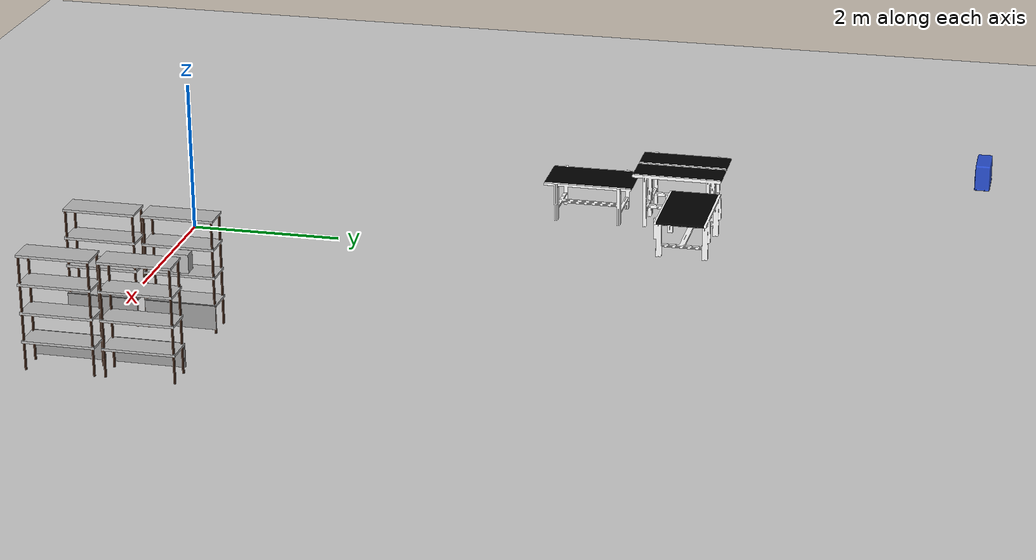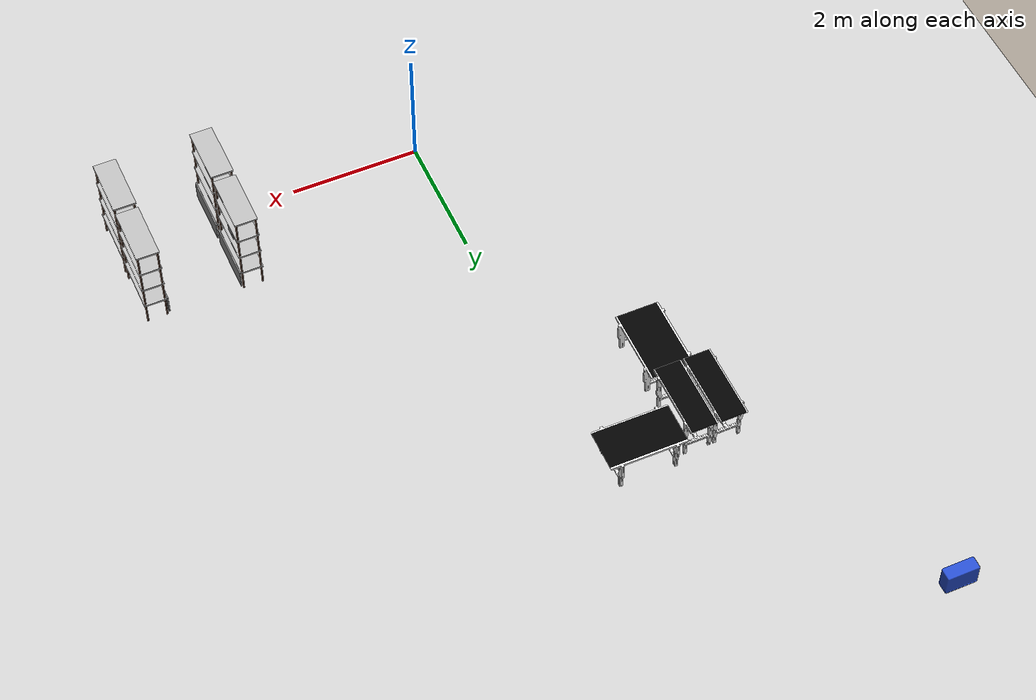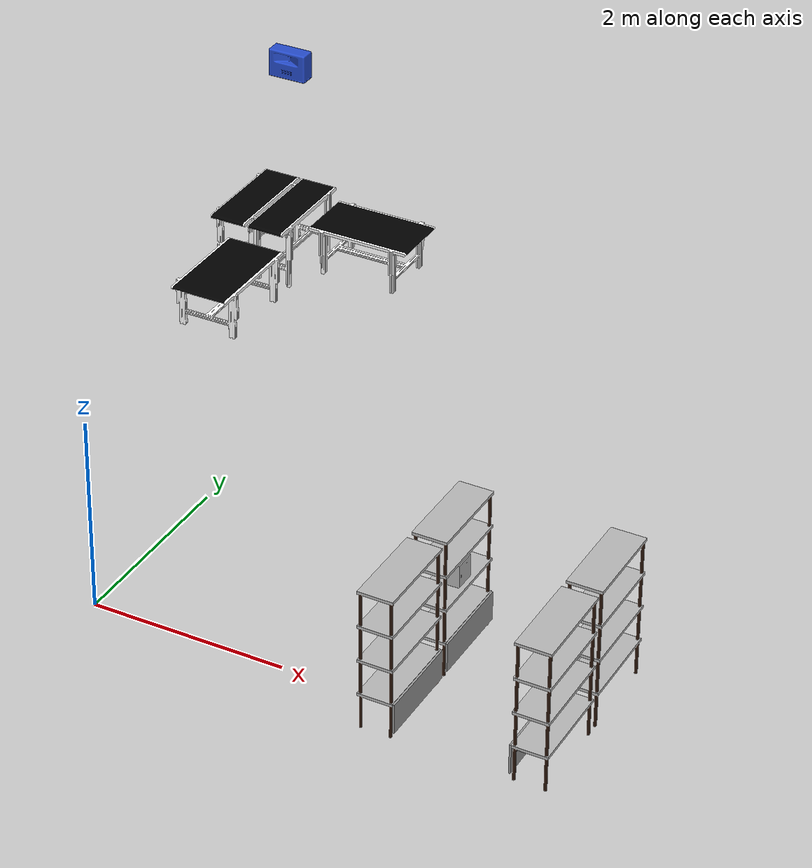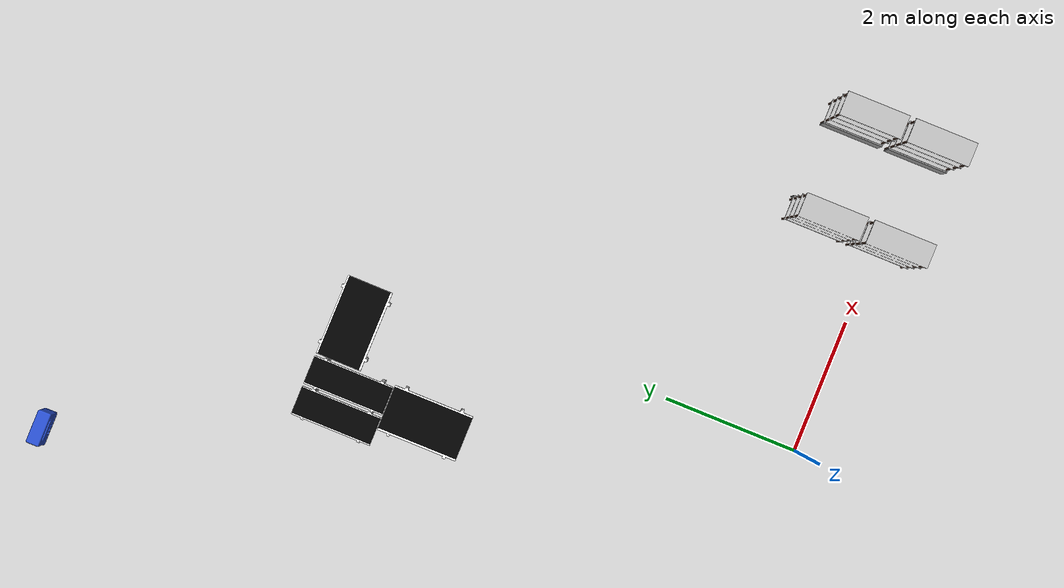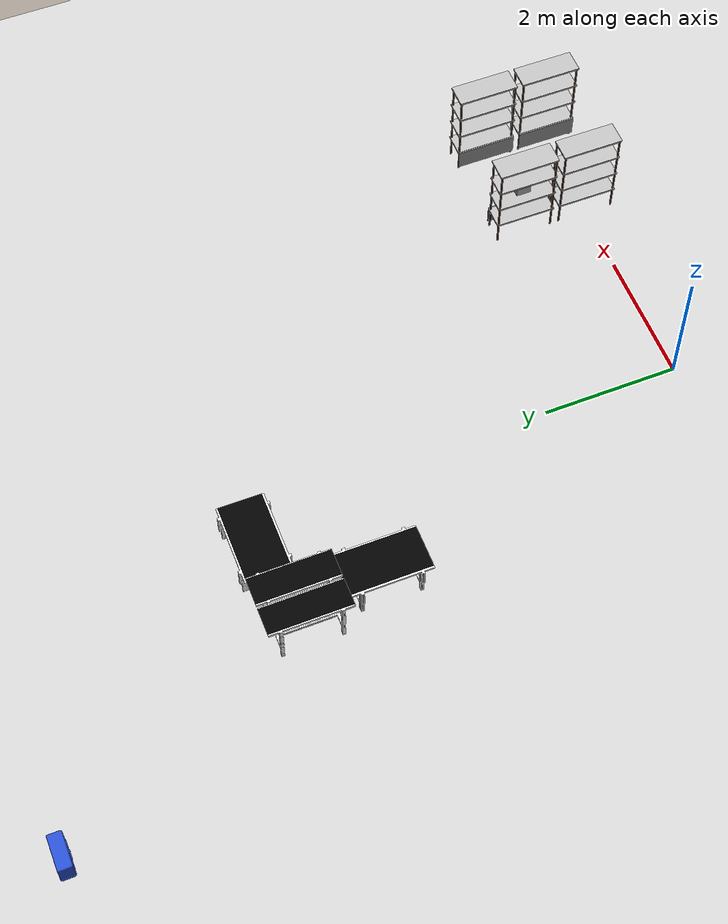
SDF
<sdf version="1.7">
 <world name="default">
  <model name="ground_plane">
   <static>1</static>
   <link name="link">
    <collision name="collision">
     <geometry><plane><normal>0 0 1</normal><size>100 100</size></plane></geometry>
     <surface><friction><ode><mu>100</mu><mu2>50</mu2></ode></friction></surface>
    </collision>
    <visual name="visual">
     <cast_shadows>0</cast_shadows>
     <geometry><plane><normal>0 0 1</normal><size>100 100</size></plane></geometry>
     <material>
      <script><uri>file://media/materials/scripts/gazebo.material</uri><name>Gazebo/Grey</name></script>
     </material>
    </visual>
   </link>
  </model>
  <model name="rack_7">
   <link name="link">
    <inertial>
     <mass>0.1</mass>
     <inertia><ixx>0.01857</ixx><ixy>0</ixy><ixz>0</ixz><iyy>0.015598</iyy><iyz>0</iyz><izz>0.00305</izz></inertia>
    </inertial>
    <visual name="visual1">
     <cast_shadows>0</cast_shadows>
     <geometry><mesh><uri>model://rack/meshes/rack.dae</uri></mesh></geometry>
     <material>
      <shader type="pixel"><normal_map>__default__</normal_map></shader>
      <emissive>0 0 0 1</emissive>
     </material>
    </visual>
    <visual name="visual_2">
     <cast_shadows>0</cast_shadows>
     <geometry><box><size>0.02 0.9 0.31</size></box></geometry>
     <material>
      <lighting>1</lighting>
      <script><uri>file://media/materials/scripts/gazebo.material</uri><name>Gazebo/Grey</name></script>
      <shader type="pixel"><normal_map>__default__</normal_map></shader>
      <ambient>0.3 0.3 0.3 1</ambient>
      <diffuse>0.7 0.7 0.7 1</diffuse>
      <specular>0.01 0.01 0.01 1</specular>
      <emissive>0 0 0 1</emissive>
     </material>
     <pose>-0.185 0 0.22 0 -0 0</pose>
    </visual>
    <collision name="collision_7">
     <pose>0 0 0.36 0 1.57 1.57</pose>
     <geometry><box><size>0.05 0.35 0.91</size></box></geometry>
     <surface>
      <friction>
       <ode><mu>1</mu><mu2>1</mu2><fdir1>0 0 0</fdir1><slip1>0</slip1><slip2>0</slip2></ode>
       <torsional>
        <coefficient>1</coefficient>
        <patch_radius>0</patch_radius>
        <surface_radius>0</surface_radius>
        <use_patch_radius>1</use_patch_radius>
        <ode><slip>0</slip></ode>
       </torsional>
      </friction>
      <bounce><restitution_coefficient>0</restitution_coefficient><threshold>1e+06</threshold></bounce>
      <contact>
       <collide_without_contact>0</collide_without_contact>
       <collide_without_contact_bitmask>1</collide_without_contact_bitmask>
       <collide_bitmask>1</collide_bitmask>
       <ode>
        <soft_cfm>0</soft_cfm>
        <soft_erp>0.2</soft_erp>
        <kp>1e+15</kp>
        <kd>1e+13</kd>
        <max_vel>0.01</max_vel>
        <min_depth>0</min_depth>
       </ode>
       <bullet>
        <split_impulse>1</split_impulse>
        <split_impulse_penetration_threshold>-0.01</split_impulse_penetration_threshold>
        <soft_cfm>0</soft_cfm>
        <soft_erp>0.2</soft_erp>
        <kp>1e+13</kp>
        <kd>1</kd>
       </bullet>
      </contact>
     </surface>
    </collision>
    <collision name="collision_6">
     <pose>0 0 0.725 0 1.57 1.57</pose>
     <geometry><box><size>0.05 0.35 0.91</size></box></geometry>
     <surface>
      <friction>
       <ode><mu>1</mu><mu2>1</mu2><fdir1>0 0 0</fdir1><slip1>0</slip1><slip2>0</slip2></ode>
       <torsional>
        <coefficient>1</coefficient>
        <patch_radius>0</patch_radius>
        <surface_radius>0</surface_radius>
        <use_patch_radius>1</use_patch_radius>
        <ode><slip>0</slip></ode>
       </torsional>
      </friction>
      <bounce><restitution_coefficient>0</restitution_coefficient><threshold>1e+06</threshold></bounce>
      <contact>
       <collide_without_contact>0</collide_without_contact>
       <collide_without_contact_bitmask>1</collide_without_contact_bitmask>
       <collide_bitmask>1</collide_bitmask>
       <ode>
        <soft_cfm>0</soft_cfm>
        <soft_erp>0.2</soft_erp>
        <kp>1e+15</kp>
        <kd>1e+13</kd>
        <max_vel>0.01</max_vel>
        <min_depth>0</min_depth>
       </ode>
       <bullet>
        <split_impulse>1</split_impulse>
        <split_impulse_penetration_threshold>-0.01</split_impulse_penetration_threshold>
        <soft_cfm>0</soft_cfm>
        <soft_erp>0.2</soft_erp>
        <kp>1e+13</kp>
        <kd>1</kd>
       </bullet>
      </contact>
     </surface>
    </collision>
    <collision name="collision_5">
     <pose>0 0 1.09 0 1.57 1.57</pose>
     <geometry><box><size>0.05 0.35 0.91</size></box></geometry>
     <surface>
      <friction>
       <ode><mu>1</mu><mu2>1</mu2><fdir1>0 0 0</fdir1><slip1>0</slip1><slip2>0</slip2></ode>
       <torsional>
        <coefficient>1</coefficient>
        <patch_radius>0</patch_radius>
        <surface_radius>0</surface_radius>
        <use_patch_radius>1</use_patch_radius>
        <ode><slip>0</slip></ode>
       </torsional>
      </friction>
      <bounce><restitution_coefficient>0</restitution_coefficient><threshold>1e+06</threshold></bounce>
      <contact>
       <collide_without_contact>0</collide_without_contact>
       <collide_without_contact_bitmask>1</collide_without_contact_bitmask>
       <collide_bitmask>1</collide_bitmask>
       <ode>
        <soft_cfm>0</soft_cfm>
        <soft_erp>0.2</soft_erp>
        <kp>1e+15</kp>
        <kd>1e+13</kd>
        <max_vel>0.01</max_vel>
        <min_depth>0</min_depth>
       </ode>
       <bullet>
        <split_impulse>1</split_impulse>
        <split_impulse_penetration_threshold>-0.01</split_impulse_penetration_threshold>
        <soft_cfm>0</soft_cfm>
        <soft_erp>0.2</soft_erp>
        <kp>1e+13</kp>
        <kd>1</kd>
       </bullet>
      </contact>
     </surface>
    </collision>
    <collision name="collision_3">
     <pose>0 0 1.455 0 1.57 1.57</pose>
     <geometry><box><size>0.05 0.35 0.91</size></box></geometry>
     <surface>
      <friction>
       <ode><mu>1</mu><mu2>1</mu2><fdir1>0 0 0</fdir1><slip1>0</slip1><slip2>0</slip2></ode>
       <torsional>
        <coefficient>1</coefficient>
        <patch_radius>0</patch_radius>
        <surface_radius>0</surface_radius>
        <use_patch_radius>1</use_patch_radius>
        <ode><slip>0</slip></ode>
       </torsional>
      </friction>
      <bounce><restitution_coefficient>0</restitution_coefficient><threshold>1e+06</threshold></bounce>
      <contact>
       <collide_without_contact>0</collide_without_contact>
       <collide_without_contact_bitmask>1</collide_without_contact_bitmask>
       <collide_bitmask>1</collide_bitmask>
       <ode>
        <soft_cfm>0</soft_cfm>
        <soft_erp>0.2</soft_erp>
        <kp>1e+15</kp>
        <kd>1e+13</kd>
        <max_vel>0.01</max_vel>
        <min_depth>0</min_depth>
       </ode>
       <bullet>
        <split_impulse>1</split_impulse>
        <split_impulse_penetration_threshold>-0.01</split_impulse_penetration_threshold>
        <soft_cfm>0</soft_cfm>
        <soft_erp>0.2</soft_erp>
        <kp>1e+13</kp>
        <kd>1</kd>
       </bullet>
      </contact>
     </surface>
    </collision>
    <collision name="collision_1">
     <pose>0 0.43 0.73 0 -0 1.57</pose>
     <geometry><box><size>0.05 0.36 1.46</size></box></geometry>
     <surface>
      <friction>
       <ode><mu>1</mu><mu2>1</mu2><fdir1>0 0 0</fdir1><slip1>0</slip1><slip2>0</slip2></ode>
       <torsional>
        <coefficient>1</coefficient>
        <patch_radius>0</patch_radius>
        <surface_radius>0</surface_radius>
        <use_patch_radius>1</use_patch_radius>
        <ode><slip>0</slip></ode>
       </torsional>
      </friction>
      <bounce><restitution_coefficient>0</restitution_coefficient><threshold>1e+06</threshold></bounce>
      <contact>
       <collide_without_contact>0</collide_without_contact>
       <collide_without_contact_bitmask>1</collide_without_contact_bitmask>
       <collide_bitmask>1</collide_bitmask>
       <ode>
        <soft_cfm>0</soft_cfm>
        <soft_erp>0.2</soft_erp>
        <kp>1e+15</kp>
        <kd>1e+13</kd>
        <max_vel>0.01</max_vel>
        <min_depth>0</min_depth>
       </ode>
       <bullet>
        <split_impulse>1</split_impulse>
        <split_impulse_penetration_threshold>-0.01</split_impulse_penetration_threshold>
        <soft_cfm>0</soft_cfm>
        <soft_erp>0.2</soft_erp>
        <kp>1e+13</kp>
        <kd>1</kd>
       </bullet>
      </contact>
     </surface>
    </collision>
    <collision name="collision_2">
     <pose>0 -0.43 0.73 0 -0 1.57</pose>
     <geometry><box><size>0.05 0.36 1.46</size></box></geometry>
     <surface>
      <friction>
       <ode><mu>1</mu><mu2>1</mu2><fdir1>0 0 0</fdir1><slip1>0</slip1><slip2>0</slip2></ode>
       <torsional>
        <coefficient>1</coefficient>
        <patch_radius>0</patch_radius>
        <surface_radius>0</surface_radius>
        <use_patch_radius>1</use_patch_radius>
        <ode><slip>0</slip></ode>
       </torsional>
      </friction>
      <bounce><restitution_coefficient>0</restitution_coefficient><threshold>1e+06</threshold></bounce>
      <contact>
       <collide_without_contact>0</collide_without_contact>
       <collide_without_contact_bitmask>1</collide_without_contact_bitmask>
       <collide_bitmask>1</collide_bitmask>
       <ode>
        <soft_cfm>0</soft_cfm>
        <soft_erp>0.2</soft_erp>
        <kp>1e+15</kp>
        <kd>1e+13</kd>
        <max_vel>0.01</max_vel>
        <min_depth>0</min_depth>
       </ode>
       <bullet>
        <split_impulse>1</split_impulse>
        <split_impulse_penetration_threshold>-0.01</split_impulse_penetration_threshold>
        <soft_cfm>0</soft_cfm>
        <soft_erp>0.2</soft_erp>
        <kp>1e+13</kp>
        <kd>1</kd>
       </bullet>
      </contact>
     </surface>
    </collision>
    <collision name="collision">
     <pose>-0.185 0 0.22 0 -0 0</pose>
     <geometry><box><size>0.02 0.9 0.31</size></box></geometry>
     <surface>
      <friction>
       <ode><mu>1</mu><mu2>1</mu2><fdir1>0 0 0</fdir1><slip1>0</slip1><slip2>0</slip2></ode>
       <torsional>
        <coefficient>1</coefficient>
        <patch_radius>0</patch_radius>
        <surface_radius>0</surface_radius>
        <use_patch_radius>1</use_patch_radius>
        <ode><slip>0</slip></ode>
       </torsional>
      </friction>
      <bounce><restitution_coefficient>0</restitution_coefficient><threshold>1e+06</threshold></bounce>
      <contact>
       <collide_without_contact>0</collide_without_contact>
       <collide_without_contact_bitmask>1</collide_without_contact_bitmask>
       <collide_bitmask>1</collide_bitmask>
       <ode>
        <soft_cfm>0</soft_cfm>
        <soft_erp>0.2</soft_erp>
        <kp>1e+15</kp>
        <kd>1e+13</kd>
        <max_vel>0.01</max_vel>
        <min_depth>0</min_depth>
       </ode>
       <bullet>
        <split_impulse>1</split_impulse>
        <split_impulse_penetration_threshold>-0.01</split_impulse_penetration_threshold>
        <soft_cfm>0</soft_cfm>
        <soft_erp>0.2</soft_erp>
        <kp>1e+13</kp>
        <kd>1</kd>
       </bullet>
      </contact>
     </surface>
    </collision>
   </link>
   <static>0</static>
   <pose>4.7 1 0.034211 0 -0 0</pose>
  </model>
  <model name="rack_8">
   <link name="link">
    <inertial>
     <mass>0.1</mass>
     <inertia><ixx>0.01857</ixx><ixy>0</ixy><ixz>0</ixz><iyy>0.015598</iyy><iyz>0</iyz><izz>0.00305</izz></inertia>
    </inertial>
    <visual name="visual1">
     <cast_shadows>0</cast_shadows>
     <geometry><mesh><uri>model://rack/meshes/rack.dae</uri></mesh></geometry>
     <material>
      <shader type="pixel"><normal_map>__default__</normal_map></shader>
      <emissive>0 0 0 1</emissive>
     </material>
    </visual>
    <visual name="visual_2">
     <cast_shadows>0</cast_shadows>
     <geometry><box><size>0.02 0.9 0.31</size></box></geometry>
     <material>
      <lighting>1</lighting>
      <script><uri>file://media/materials/scripts/gazebo.material</uri><name>Gazebo/Grey</name></script>
      <shader type="pixel"><normal_map>__default__</normal_map></shader>
      <ambient>0.3 0.3 0.3 1</ambient>
      <diffuse>0.7 0.7 0.7 1</diffuse>
      <specular>0.01 0.01 0.01 1</specular>
      <emissive>0 0 0 1</emissive>
     </material>
     <pose>-0.185 0 0.22 0 -0 0</pose>
    </visual>
    <collision name="collision_7">
     <pose>0 0 0.36 0 1.57 1.57</pose>
     <geometry><box><size>0.05 0.35 0.91</size></box></geometry>
     <surface>
      <friction>
       <ode><mu>1</mu><mu2>1</mu2><fdir1>0 0 0</fdir1><slip1>0</slip1><slip2>0</slip2></ode>
       <torsional>
        <coefficient>1</coefficient>
        <patch_radius>0</patch_radius>
        <surface_radius>0</surface_radius>
        <use_patch_radius>1</use_patch_radius>
        <ode><slip>0</slip></ode>
       </torsional>
      </friction>
      <bounce><restitution_coefficient>0</restitution_coefficient><threshold>1e+06</threshold></bounce>
      <contact>
       <collide_without_contact>0</collide_without_contact>
       <collide_without_contact_bitmask>1</collide_without_contact_bitmask>
       <collide_bitmask>1</collide_bitmask>
       <ode>
        <soft_cfm>0</soft_cfm>
        <soft_erp>0.2</soft_erp>
        <kp>1e+15</kp>
        <kd>1e+13</kd>
        <max_vel>0.01</max_vel>
        <min_depth>0</min_depth>
       </ode>
       <bullet>
        <split_impulse>1</split_impulse>
        <split_impulse_penetration_threshold>-0.01</split_impulse_penetration_threshold>
        <soft_cfm>0</soft_cfm>
        <soft_erp>0.2</soft_erp>
        <kp>1e+13</kp>
        <kd>1</kd>
       </bullet>
      </contact>
     </surface>
    </collision>
    <collision name="collision_6">
     <pose>0 0 0.725 0 1.57 1.57</pose>
     <geometry><box><size>0.05 0.35 0.91</size></box></geometry>
     <surface>
      <friction>
       <ode><mu>1</mu><mu2>1</mu2><fdir1>0 0 0</fdir1><slip1>0</slip1><slip2>0</slip2></ode>
       <torsional>
        <coefficient>1</coefficient>
        <patch_radius>0</patch_radius>
        <surface_radius>0</surface_radius>
        <use_patch_radius>1</use_patch_radius>
        <ode><slip>0</slip></ode>
       </torsional>
      </friction>
      <bounce><restitution_coefficient>0</restitution_coefficient><threshold>1e+06</threshold></bounce>
      <contact>
       <collide_without_contact>0</collide_without_contact>
       <collide_without_contact_bitmask>1</collide_without_contact_bitmask>
       <collide_bitmask>1</collide_bitmask>
       <ode>
        <soft_cfm>0</soft_cfm>
        <soft_erp>0.2</soft_erp>
        <kp>1e+15</kp>
        <kd>1e+13</kd>
        <max_vel>0.01</max_vel>
        <min_depth>0</min_depth>
       </ode>
       <bullet>
        <split_impulse>1</split_impulse>
        <split_impulse_penetration_threshold>-0.01</split_impulse_penetration_threshold>
        <soft_cfm>0</soft_cfm>
        <soft_erp>0.2</soft_erp>
        <kp>1e+13</kp>
        <kd>1</kd>
       </bullet>
      </contact>
     </surface>
    </collision>
    <collision name="collision_5">
     <pose>0 0 1.09 0 1.57 1.57</pose>
     <geometry><box><size>0.05 0.35 0.91</size></box></geometry>
     <surface>
      <friction>
       <ode><mu>1</mu><mu2>1</mu2><fdir1>0 0 0</fdir1><slip1>0</slip1><slip2>0</slip2></ode>
       <torsional>
        <coefficient>1</coefficient>
        <patch_radius>0</patch_radius>
        <surface_radius>0</surface_radius>
        <use_patch_radius>1</use_patch_radius>
        <ode><slip>0</slip></ode>
       </torsional>
      </friction>
      <bounce><restitution_coefficient>0</restitution_coefficient><threshold>1e+06</threshold></bounce>
      <contact>
       <collide_without_contact>0</collide_without_contact>
       <collide_without_contact_bitmask>1</collide_without_contact_bitmask>
       <collide_bitmask>1</collide_bitmask>
       <ode>
        <soft_cfm>0</soft_cfm>
        <soft_erp>0.2</soft_erp>
        <kp>1e+15</kp>
        <kd>1e+13</kd>
        <max_vel>0.01</max_vel>
        <min_depth>0</min_depth>
       </ode>
       <bullet>
        <split_impulse>1</split_impulse>
        <split_impulse_penetration_threshold>-0.01</split_impulse_penetration_threshold>
        <soft_cfm>0</soft_cfm>
        <soft_erp>0.2</soft_erp>
        <kp>1e+13</kp>
        <kd>1</kd>
       </bullet>
      </contact>
     </surface>
    </collision>
    <collision name="collision_3">
     <pose>0 0 1.455 0 1.57 1.57</pose>
     <geometry><box><size>0.05 0.35 0.91</size></box></geometry>
     <surface>
      <friction>
       <ode><mu>1</mu><mu2>1</mu2><fdir1>0 0 0</fdir1><slip1>0</slip1><slip2>0</slip2></ode>
       <torsional>
        <coefficient>1</coefficient>
        <patch_radius>0</patch_radius>
        <surface_radius>0</surface_radius>
        <use_patch_radius>1</use_patch_radius>
        <ode><slip>0</slip></ode>
       </torsional>
      </friction>
      <bounce><restitution_coefficient>0</restitution_coefficient><threshold>1e+06</threshold></bounce>
      <contact>
       <collide_without_contact>0</collide_without_contact>
       <collide_without_contact_bitmask>1</collide_without_contact_bitmask>
       <collide_bitmask>1</collide_bitmask>
       <ode>
        <soft_cfm>0</soft_cfm>
        <soft_erp>0.2</soft_erp>
        <kp>1e+15</kp>
        <kd>1e+13</kd>
        <max_vel>0.01</max_vel>
        <min_depth>0</min_depth>
       </ode>
       <bullet>
        <split_impulse>1</split_impulse>
        <split_impulse_penetration_threshold>-0.01</split_impulse_penetration_threshold>
        <soft_cfm>0</soft_cfm>
        <soft_erp>0.2</soft_erp>
        <kp>1e+13</kp>
        <kd>1</kd>
       </bullet>
      </contact>
     </surface>
    </collision>
    <collision name="collision_1">
     <pose>0 0.43 0.73 0 -0 1.57</pose>
     <geometry><box><size>0.05 0.36 1.46</size></box></geometry>
     <surface>
      <friction>
       <ode><mu>1</mu><mu2>1</mu2><fdir1>0 0 0</fdir1><slip1>0</slip1><slip2>0</slip2></ode>
       <torsional>
        <coefficient>1</coefficient>
        <patch_radius>0</patch_radius>
        <surface_radius>0</surface_radius>
        <use_patch_radius>1</use_patch_radius>
        <ode><slip>0</slip></ode>
       </torsional>
      </friction>
      <bounce><restitution_coefficient>0</restitution_coefficient><threshold>1e+06</threshold></bounce>
      <contact>
       <collide_without_contact>0</collide_without_contact>
       <collide_without_contact_bitmask>1</collide_without_contact_bitmask>
       <collide_bitmask>1</collide_bitmask>
       <ode>
        <soft_cfm>0</soft_cfm>
        <soft_erp>0.2</soft_erp>
        <kp>1e+15</kp>
        <kd>1e+13</kd>
        <max_vel>0.01</max_vel>
        <min_depth>0</min_depth>
       </ode>
       <bullet>
        <split_impulse>1</split_impulse>
        <split_impulse_penetration_threshold>-0.01</split_impulse_penetration_threshold>
        <soft_cfm>0</soft_cfm>
        <soft_erp>0.2</soft_erp>
        <kp>1e+13</kp>
        <kd>1</kd>
       </bullet>
      </contact>
     </surface>
    </collision>
    <collision name="collision_2">
     <pose>0 -0.43 0.73 0 -0 1.57</pose>
     <geometry><box><size>0.05 0.36 1.46</size></box></geometry>
     <surface>
      <friction>
       <ode><mu>1</mu><mu2>1</mu2><fdir1>0 0 0</fdir1><slip1>0</slip1><slip2>0</slip2></ode>
       <torsional>
        <coefficient>1</coefficient>
        <patch_radius>0</patch_radius>
        <surface_radius>0</surface_radius>
        <use_patch_radius>1</use_patch_radius>
        <ode><slip>0</slip></ode>
       </torsional>
      </friction>
      <bounce><restitution_coefficient>0</restitution_coefficient><threshold>1e+06</threshold></bounce>
      <contact>
       <collide_without_contact>0</collide_without_contact>
       <collide_without_contact_bitmask>1</collide_without_contact_bitmask>
       <collide_bitmask>1</collide_bitmask>
       <ode>
        <soft_cfm>0</soft_cfm>
        <soft_erp>0.2</soft_erp>
        <kp>1e+15</kp>
        <kd>1e+13</kd>
        <max_vel>0.01</max_vel>
        <min_depth>0</min_depth>
       </ode>
       <bullet>
        <split_impulse>1</split_impulse>
        <split_impulse_penetration_threshold>-0.01</split_impulse_penetration_threshold>
        <soft_cfm>0</soft_cfm>
        <soft_erp>0.2</soft_erp>
        <kp>1e+13</kp>
        <kd>1</kd>
       </bullet>
      </contact>
     </surface>
    </collision>
    <collision name="collision">
     <pose>-0.185 0 0.22 0 -0 0</pose>
     <geometry><box><size>0.02 0.9 0.31</size></box></geometry>
     <surface>
      <friction>
       <ode><mu>1</mu><mu2>1</mu2><fdir1>0 0 0</fdir1><slip1>0</slip1><slip2>0</slip2></ode>
       <torsional>
        <coefficient>1</coefficient>
        <patch_radius>0</patch_radius>
        <surface_radius>0</surface_radius>
        <use_patch_radius>1</use_patch_radius>
        <ode><slip>0</slip></ode>
       </torsional>
      </friction>
      <bounce><restitution_coefficient>0</restitution_coefficient><threshold>1e+06</threshold></bounce>
      <contact>
       <collide_without_contact>0</collide_without_contact>
       <collide_without_contact_bitmask>1</collide_without_contact_bitmask>
       <collide_bitmask>1</collide_bitmask>
       <ode>
        <soft_cfm>0</soft_cfm>
        <soft_erp>0.2</soft_erp>
        <kp>1e+15</kp>
        <kd>1e+13</kd>
        <max_vel>0.01</max_vel>
        <min_depth>0</min_depth>
       </ode>
       <bullet>
        <split_impulse>1</split_impulse>
        <split_impulse_penetration_threshold>-0.01</split_impulse_penetration_threshold>
        <soft_cfm>0</soft_cfm>
        <soft_erp>0.2</soft_erp>
        <kp>1e+13</kp>
        <kd>1</kd>
       </bullet>
      </contact>
     </surface>
    </collision>
   </link>
   <static>0</static>
   <pose>4.7 0 0.034213 1e-06 4e-06 -2e-06</pose>
  </model>
  <model name="rack_11">
   <link name="link">
    <inertial>
     <mass>0.1</mass>
     <inertia><ixx>0.01857</ixx><ixy>0</ixy><ixz>0</ixz><iyy>0.015598</iyy><iyz>0</iyz><izz>0.00305</izz></inertia>
    </inertial>
    <visual name="visual1">
     <cast_shadows>0</cast_shadows>
     <geometry><mesh><uri>model://rack/meshes/rack.dae</uri></mesh></geometry>
     <material>
      <shader type="pixel"><normal_map>__default__</normal_map></shader>
      <emissive>0 0 0 1</emissive>
     </material>
    </visual>
    <visual name="visual_2">
     <cast_shadows>0</cast_shadows>
     <geometry><box><size>0.02 0.9 0.31</size></box></geometry>
     <material>
      <lighting>1</lighting>
      <script><uri>file://media/materials/scripts/gazebo.material</uri><name>Gazebo/Grey</name></script>
      <shader type="pixel"><normal_map>__default__</normal_map></shader>
      <ambient>0.3 0.3 0.3 1</ambient>
      <diffuse>0.7 0.7 0.7 1</diffuse>
      <specular>0.01 0.01 0.01 1</specular>
      <emissive>0 0 0 1</emissive>
     </material>
     <pose>-0.185 0 0.22 0 -0 0</pose>
    </visual>
    <collision name="collision_7">
     <pose>0 0 0.36 0 1.57 1.57</pose>
     <geometry><box><size>0.05 0.35 0.91</size></box></geometry>
     <surface>
      <friction>
       <ode><mu>1</mu><mu2>1</mu2><fdir1>0 0 0</fdir1><slip1>0</slip1><slip2>0</slip2></ode>
       <torsional>
        <coefficient>1</coefficient>
        <patch_radius>0</patch_radius>
        <surface_radius>0</surface_radius>
        <use_patch_radius>1</use_patch_radius>
        <ode><slip>0</slip></ode>
       </torsional>
      </friction>
      <bounce><restitution_coefficient>0</restitution_coefficient><threshold>1e+06</threshold></bounce>
      <contact>
       <collide_without_contact>0</collide_without_contact>
       <collide_without_contact_bitmask>1</collide_without_contact_bitmask>
       <collide_bitmask>1</collide_bitmask>
       <ode>
        <soft_cfm>0</soft_cfm>
        <soft_erp>0.2</soft_erp>
        <kp>1e+15</kp>
        <kd>1e+13</kd>
        <max_vel>0.01</max_vel>
        <min_depth>0</min_depth>
       </ode>
       <bullet>
        <split_impulse>1</split_impulse>
        <split_impulse_penetration_threshold>-0.01</split_impulse_penetration_threshold>
        <soft_cfm>0</soft_cfm>
        <soft_erp>0.2</soft_erp>
        <kp>1e+13</kp>
        <kd>1</kd>
       </bullet>
      </contact>
     </surface>
    </collision>
    <collision name="collision_6">
     <pose>0 0 0.725 0 1.57 1.57</pose>
     <geometry><box><size>0.05 0.35 0.91</size></box></geometry>
     <surface>
      <friction>
       <ode><mu>1</mu><mu2>1</mu2><fdir1>0 0 0</fdir1><slip1>0</slip1><slip2>0</slip2></ode>
       <torsional>
        <coefficient>1</coefficient>
        <patch_radius>0</patch_radius>
        <surface_radius>0</surface_radius>
        <use_patch_radius>1</use_patch_radius>
        <ode><slip>0</slip></ode>
       </torsional>
      </friction>
      <bounce><restitution_coefficient>0</restitution_coefficient><threshold>1e+06</threshold></bounce>
      <contact>
       <collide_without_contact>0</collide_without_contact>
       <collide_without_contact_bitmask>1</collide_without_contact_bitmask>
       <collide_bitmask>1</collide_bitmask>
       <ode>
        <soft_cfm>0</soft_cfm>
        <soft_erp>0.2</soft_erp>
        <kp>1e+15</kp>
        <kd>1e+13</kd>
        <max_vel>0.01</max_vel>
        <min_depth>0</min_depth>
       </ode>
       <bullet>
        <split_impulse>1</split_impulse>
        <split_impulse_penetration_threshold>-0.01</split_impulse_penetration_threshold>
        <soft_cfm>0</soft_cfm>
        <soft_erp>0.2</soft_erp>
        <kp>1e+13</kp>
        <kd>1</kd>
       </bullet>
      </contact>
     </surface>
    </collision>
    <collision name="collision_5">
     <pose>0 0 1.09 0 1.57 1.57</pose>
     <geometry><box><size>0.05 0.35 0.91</size></box></geometry>
     <surface>
      <friction>
       <ode><mu>1</mu><mu2>1</mu2><fdir1>0 0 0</fdir1><slip1>0</slip1><slip2>0</slip2></ode>
       <torsional>
        <coefficient>1</coefficient>
        <patch_radius>0</patch_radius>
        <surface_radius>0</surface_radius>
        <use_patch_radius>1</use_patch_radius>
        <ode><slip>0</slip></ode>
       </torsional>
      </friction>
      <bounce><restitution_coefficient>0</restitution_coefficient><threshold>1e+06</threshold></bounce>
      <contact>
       <collide_without_contact>0</collide_without_contact>
       <collide_without_contact_bitmask>1</collide_without_contact_bitmask>
       <collide_bitmask>1</collide_bitmask>
       <ode>
        <soft_cfm>0</soft_cfm>
        <soft_erp>0.2</soft_erp>
        <kp>1e+15</kp>
        <kd>1e+13</kd>
        <max_vel>0.01</max_vel>
        <min_depth>0</min_depth>
       </ode>
       <bullet>
        <split_impulse>1</split_impulse>
        <split_impulse_penetration_threshold>-0.01</split_impulse_penetration_threshold>
        <soft_cfm>0</soft_cfm>
        <soft_erp>0.2</soft_erp>
        <kp>1e+13</kp>
        <kd>1</kd>
       </bullet>
      </contact>
     </surface>
    </collision>
    <collision name="collision_3">
     <pose>0 0 1.455 0 1.57 1.57</pose>
     <geometry><box><size>0.05 0.35 0.91</size></box></geometry>
     <surface>
      <friction>
       <ode><mu>1</mu><mu2>1</mu2><fdir1>0 0 0</fdir1><slip1>0</slip1><slip2>0</slip2></ode>
       <torsional>
        <coefficient>1</coefficient>
        <patch_radius>0</patch_radius>
        <surface_radius>0</surface_radius>
        <use_patch_radius>1</use_patch_radius>
        <ode><slip>0</slip></ode>
       </torsional>
      </friction>
      <bounce><restitution_coefficient>0</restitution_coefficient><threshold>1e+06</threshold></bounce>
      <contact>
       <collide_without_contact>0</collide_without_contact>
       <collide_without_contact_bitmask>1</collide_without_contact_bitmask>
       <collide_bitmask>1</collide_bitmask>
       <ode>
        <soft_cfm>0</soft_cfm>
        <soft_erp>0.2</soft_erp>
        <kp>1e+15</kp>
        <kd>1e+13</kd>
        <max_vel>0.01</max_vel>
        <min_depth>0</min_depth>
       </ode>
       <bullet>
        <split_impulse>1</split_impulse>
        <split_impulse_penetration_threshold>-0.01</split_impulse_penetration_threshold>
        <soft_cfm>0</soft_cfm>
        <soft_erp>0.2</soft_erp>
        <kp>1e+13</kp>
        <kd>1</kd>
       </bullet>
      </contact>
     </surface>
    </collision>
    <collision name="collision_1">
     <pose>0 0.43 0.73 0 -0 1.57</pose>
     <geometry><box><size>0.05 0.36 1.46</size></box></geometry>
     <surface>
      <friction>
       <ode><mu>1</mu><mu2>1</mu2><fdir1>0 0 0</fdir1><slip1>0</slip1><slip2>0</slip2></ode>
       <torsional>
        <coefficient>1</coefficient>
        <patch_radius>0</patch_radius>
        <surface_radius>0</surface_radius>
        <use_patch_radius>1</use_patch_radius>
        <ode><slip>0</slip></ode>
       </torsional>
      </friction>
      <bounce><restitution_coefficient>0</restitution_coefficient><threshold>1e+06</threshold></bounce>
      <contact>
       <collide_without_contact>0</collide_without_contact>
       <collide_without_contact_bitmask>1</collide_without_contact_bitmask>
       <collide_bitmask>1</collide_bitmask>
       <ode>
        <soft_cfm>0</soft_cfm>
        <soft_erp>0.2</soft_erp>
        <kp>1e+15</kp>
        <kd>1e+13</kd>
        <max_vel>0.01</max_vel>
        <min_depth>0</min_depth>
       </ode>
       <bullet>
        <split_impulse>1</split_impulse>
        <split_impulse_penetration_threshold>-0.01</split_impulse_penetration_threshold>
        <soft_cfm>0</soft_cfm>
        <soft_erp>0.2</soft_erp>
        <kp>1e+13</kp>
        <kd>1</kd>
       </bullet>
      </contact>
     </surface>
    </collision>
    <collision name="collision_2">
     <pose>0 -0.43 0.73 0 -0 1.57</pose>
     <geometry><box><size>0.05 0.36 1.46</size></box></geometry>
     <surface>
      <friction>
       <ode><mu>1</mu><mu2>1</mu2><fdir1>0 0 0</fdir1><slip1>0</slip1><slip2>0</slip2></ode>
       <torsional>
        <coefficient>1</coefficient>
        <patch_radius>0</patch_radius>
        <surface_radius>0</surface_radius>
        <use_patch_radius>1</use_patch_radius>
        <ode><slip>0</slip></ode>
       </torsional>
      </friction>
      <bounce><restitution_coefficient>0</restitution_coefficient><threshold>1e+06</threshold></bounce>
      <contact>
       <collide_without_contact>0</collide_without_contact>
       <collide_without_contact_bitmask>1</collide_without_contact_bitmask>
       <collide_bitmask>1</collide_bitmask>
       <ode>
        <soft_cfm>0</soft_cfm>
        <soft_erp>0.2</soft_erp>
        <kp>1e+15</kp>
        <kd>1e+13</kd>
        <max_vel>0.01</max_vel>
        <min_depth>0</min_depth>
       </ode>
       <bullet>
        <split_impulse>1</split_impulse>
        <split_impulse_penetration_threshold>-0.01</split_impulse_penetration_threshold>
        <soft_cfm>0</soft_cfm>
        <soft_erp>0.2</soft_erp>
        <kp>1e+13</kp>
        <kd>1</kd>
       </bullet>
      </contact>
     </surface>
    </collision>
    <collision name="collision">
     <pose>-0.185 0 0.22 0 -0 0</pose>
     <geometry><box><size>0.02 0.9 0.31</size></box></geometry>
     <surface>
      <friction>
       <ode><mu>1</mu><mu2>1</mu2><fdir1>0 0 0</fdir1><slip1>0</slip1><slip2>0</slip2></ode>
       <torsional>
        <coefficient>1</coefficient>
        <patch_radius>0</patch_radius>
        <surface_radius>0</surface_radius>
        <use_patch_radius>1</use_patch_radius>
        <ode><slip>0</slip></ode>
       </torsional>
      </friction>
      <bounce><restitution_coefficient>0</restitution_coefficient><threshold>1e+06</threshold></bounce>
      <contact>
       <collide_without_contact>0</collide_without_contact>
       <collide_without_contact_bitmask>1</collide_without_contact_bitmask>
       <collide_bitmask>1</collide_bitmask>
       <ode>
        <soft_cfm>0</soft_cfm>
        <soft_erp>0.2</soft_erp>
        <kp>1e+15</kp>
        <kd>1e+13</kd>
        <max_vel>0.01</max_vel>
        <min_depth>0</min_depth>
       </ode>
       <bullet>
        <split_impulse>1</split_impulse>
        <split_impulse_penetration_threshold>-0.01</split_impulse_penetration_threshold>
        <soft_cfm>0</soft_cfm>
        <soft_erp>0.2</soft_erp>
        <kp>1e+13</kp>
        <kd>1</kd>
       </bullet>
      </contact>
     </surface>
    </collision>
   </link>
   <static>0</static>
   <pose>3.2 1 0.034143 1e-06 2e-06 3.14</pose>
  </model>
  <model name="rack_12">
   <link name="link">
    <inertial>
     <mass>0.1</mass>
     <inertia><ixx>0.01857</ixx><ixy>0</ixy><ixz>0</ixz><iyy>0.015598</iyy><iyz>0</iyz><izz>0.00305</izz></inertia>
    </inertial>
    <visual name="visual1">
     <cast_shadows>0</cast_shadows>
     <geometry><mesh><uri>model://rack/meshes/rack.dae</uri></mesh></geometry>
     <material>
      <shader type="pixel"><normal_map>__default__</normal_map></shader>
      <emissive>0 0 0 1</emissive>
     </material>
    </visual>
    <visual name="visual_2">
     <cast_shadows>0</cast_shadows>
     <geometry><box><size>0.02 0.9 0.31</size></box></geometry>
     <material>
      <lighting>1</lighting>
      <script><uri>file://media/materials/scripts/gazebo.material</uri><name>Gazebo/Grey</name></script>
      <shader type="pixel"><normal_map>__default__</normal_map></shader>
      <ambient>0.3 0.3 0.3 1</ambient>
      <diffuse>0.7 0.7 0.7 1</diffuse>
      <specular>0.01 0.01 0.01 1</specular>
      <emissive>0 0 0 1</emissive>
     </material>
     <pose>-0.185 0 0.22 0 -0 0</pose>
    </visual>
    <collision name="collision_7">
     <pose>0 0 0.36 0 1.57 1.57</pose>
     <geometry><box><size>0.05 0.35 0.91</size></box></geometry>
     <surface>
      <friction>
       <ode><mu>1</mu><mu2>1</mu2><fdir1>0 0 0</fdir1><slip1>0</slip1><slip2>0</slip2></ode>
       <torsional>
        <coefficient>1</coefficient>
        <patch_radius>0</patch_radius>
        <surface_radius>0</surface_radius>
        <use_patch_radius>1</use_patch_radius>
        <ode><slip>0</slip></ode>
       </torsional>
      </friction>
      <bounce><restitution_coefficient>0</restitution_coefficient><threshold>1e+06</threshold></bounce>
      <contact>
       <collide_without_contact>0</collide_without_contact>
       <collide_without_contact_bitmask>1</collide_without_contact_bitmask>
       <collide_bitmask>1</collide_bitmask>
       <ode>
        <soft_cfm>0</soft_cfm>
        <soft_erp>0.2</soft_erp>
        <kp>1e+15</kp>
        <kd>1e+13</kd>
        <max_vel>0.01</max_vel>
        <min_depth>0</min_depth>
       </ode>
       <bullet>
        <split_impulse>1</split_impulse>
        <split_impulse_penetration_threshold>-0.01</split_impulse_penetration_threshold>
        <soft_cfm>0</soft_cfm>
        <soft_erp>0.2</soft_erp>
        <kp>1e+13</kp>
        <kd>1</kd>
       </bullet>
      </contact>
     </surface>
    </collision>
    <collision name="collision_6">
     <pose>0 0 0.725 0 1.57 1.57</pose>
     <geometry><box><size>0.05 0.35 0.91</size></box></geometry>
     <surface>
      <friction>
       <ode><mu>1</mu><mu2>1</mu2><fdir1>0 0 0</fdir1><slip1>0</slip1><slip2>0</slip2></ode>
       <torsional>
        <coefficient>1</coefficient>
        <patch_radius>0</patch_radius>
        <surface_radius>0</surface_radius>
        <use_patch_radius>1</use_patch_radius>
        <ode><slip>0</slip></ode>
       </torsional>
      </friction>
      <bounce><restitution_coefficient>0</restitution_coefficient><threshold>1e+06</threshold></bounce>
      <contact>
       <collide_without_contact>0</collide_without_contact>
       <collide_without_contact_bitmask>1</collide_without_contact_bitmask>
       <collide_bitmask>1</collide_bitmask>
       <ode>
        <soft_cfm>0</soft_cfm>
        <soft_erp>0.2</soft_erp>
        <kp>1e+15</kp>
        <kd>1e+13</kd>
        <max_vel>0.01</max_vel>
        <min_depth>0</min_depth>
       </ode>
       <bullet>
        <split_impulse>1</split_impulse>
        <split_impulse_penetration_threshold>-0.01</split_impulse_penetration_threshold>
        <soft_cfm>0</soft_cfm>
        <soft_erp>0.2</soft_erp>
        <kp>1e+13</kp>
        <kd>1</kd>
       </bullet>
      </contact>
     </surface>
    </collision>
    <collision name="collision_5">
     <pose>0 0 1.09 0 1.57 1.57</pose>
     <geometry><box><size>0.05 0.35 0.91</size></box></geometry>
     <surface>
      <friction>
       <ode><mu>1</mu><mu2>1</mu2><fdir1>0 0 0</fdir1><slip1>0</slip1><slip2>0</slip2></ode>
       <torsional>
        <coefficient>1</coefficient>
        <patch_radius>0</patch_radius>
        <surface_radius>0</surface_radius>
        <use_patch_radius>1</use_patch_radius>
        <ode><slip>0</slip></ode>
       </torsional>
      </friction>
      <bounce><restitution_coefficient>0</restitution_coefficient><threshold>1e+06</threshold></bounce>
      <contact>
       <collide_without_contact>0</collide_without_contact>
       <collide_without_contact_bitmask>1</collide_without_contact_bitmask>
       <collide_bitmask>1</collide_bitmask>
       <ode>
        <soft_cfm>0</soft_cfm>
        <soft_erp>0.2</soft_erp>
        <kp>1e+15</kp>
        <kd>1e+13</kd>
        <max_vel>0.01</max_vel>
        <min_depth>0</min_depth>
       </ode>
       <bullet>
        <split_impulse>1</split_impulse>
        <split_impulse_penetration_threshold>-0.01</split_impulse_penetration_threshold>
        <soft_cfm>0</soft_cfm>
        <soft_erp>0.2</soft_erp>
        <kp>1e+13</kp>
        <kd>1</kd>
       </bullet>
      </contact>
     </surface>
    </collision>
    <collision name="collision_3">
     <pose>0 0 1.455 0 1.57 1.57</pose>
     <geometry><box><size>0.05 0.35 0.91</size></box></geometry>
     <surface>
      <friction>
       <ode><mu>1</mu><mu2>1</mu2><fdir1>0 0 0</fdir1><slip1>0</slip1><slip2>0</slip2></ode>
       <torsional>
        <coefficient>1</coefficient>
        <patch_radius>0</patch_radius>
        <surface_radius>0</surface_radius>
        <use_patch_radius>1</use_patch_radius>
        <ode><slip>0</slip></ode>
       </torsional>
      </friction>
      <bounce><restitution_coefficient>0</restitution_coefficient><threshold>1e+06</threshold></bounce>
      <contact>
       <collide_without_contact>0</collide_without_contact>
       <collide_without_contact_bitmask>1</collide_without_contact_bitmask>
       <collide_bitmask>1</collide_bitmask>
       <ode>
        <soft_cfm>0</soft_cfm>
        <soft_erp>0.2</soft_erp>
        <kp>1e+15</kp>
        <kd>1e+13</kd>
        <max_vel>0.01</max_vel>
        <min_depth>0</min_depth>
       </ode>
       <bullet>
        <split_impulse>1</split_impulse>
        <split_impulse_penetration_threshold>-0.01</split_impulse_penetration_threshold>
        <soft_cfm>0</soft_cfm>
        <soft_erp>0.2</soft_erp>
        <kp>1e+13</kp>
        <kd>1</kd>
       </bullet>
      </contact>
     </surface>
    </collision>
    <collision name="collision_1">
     <pose>0 0.43 0.73 0 -0 1.57</pose>
     <geometry><box><size>0.05 0.36 1.46</size></box></geometry>
     <surface>
      <friction>
       <ode><mu>1</mu><mu2>1</mu2><fdir1>0 0 0</fdir1><slip1>0</slip1><slip2>0</slip2></ode>
       <torsional>
        <coefficient>1</coefficient>
        <patch_radius>0</patch_radius>
        <surface_radius>0</surface_radius>
        <use_patch_radius>1</use_patch_radius>
        <ode><slip>0</slip></ode>
       </torsional>
      </friction>
      <bounce><restitution_coefficient>0</restitution_coefficient><threshold>1e+06</threshold></bounce>
      <contact>
       <collide_without_contact>0</collide_without_contact>
       <collide_without_contact_bitmask>1</collide_without_contact_bitmask>
       <collide_bitmask>1</collide_bitmask>
       <ode>
        <soft_cfm>0</soft_cfm>
        <soft_erp>0.2</soft_erp>
        <kp>1e+15</kp>
        <kd>1e+13</kd>
        <max_vel>0.01</max_vel>
        <min_depth>0</min_depth>
       </ode>
       <bullet>
        <split_impulse>1</split_impulse>
        <split_impulse_penetration_threshold>-0.01</split_impulse_penetration_threshold>
        <soft_cfm>0</soft_cfm>
        <soft_erp>0.2</soft_erp>
        <kp>1e+13</kp>
        <kd>1</kd>
       </bullet>
      </contact>
     </surface>
    </collision>
    <collision name="collision_2">
     <pose>0 -0.43 0.73 0 -0 1.57</pose>
     <geometry><box><size>0.05 0.36 1.46</size></box></geometry>
     <surface>
      <friction>
       <ode><mu>1</mu><mu2>1</mu2><fdir1>0 0 0</fdir1><slip1>0</slip1><slip2>0</slip2></ode>
       <torsional>
        <coefficient>1</coefficient>
        <patch_radius>0</patch_radius>
        <surface_radius>0</surface_radius>
        <use_patch_radius>1</use_patch_radius>
        <ode><slip>0</slip></ode>
       </torsional>
      </friction>
      <bounce><restitution_coefficient>0</restitution_coefficient><threshold>1e+06</threshold></bounce>
      <contact>
       <collide_without_contact>0</collide_without_contact>
       <collide_without_contact_bitmask>1</collide_without_contact_bitmask>
       <collide_bitmask>1</collide_bitmask>
       <ode>
        <soft_cfm>0</soft_cfm>
        <soft_erp>0.2</soft_erp>
        <kp>1e+15</kp>
        <kd>1e+13</kd>
        <max_vel>0.01</max_vel>
        <min_depth>0</min_depth>
       </ode>
       <bullet>
        <split_impulse>1</split_impulse>
        <split_impulse_penetration_threshold>-0.01</split_impulse_penetration_threshold>
        <soft_cfm>0</soft_cfm>
        <soft_erp>0.2</soft_erp>
        <kp>1e+13</kp>
        <kd>1</kd>
       </bullet>
      </contact>
     </surface>
    </collision>
    <collision name="collision">
     <pose>-0.185 0 0.22 0 -0 0</pose>
     <geometry><box><size>0.02 0.9 0.31</size></box></geometry>
     <surface>
      <friction>
       <ode><mu>1</mu><mu2>1</mu2><fdir1>0 0 0</fdir1><slip1>0</slip1><slip2>0</slip2></ode>
       <torsional>
        <coefficient>1</coefficient>
        <patch_radius>0</patch_radius>
        <surface_radius>0</surface_radius>
        <use_patch_radius>1</use_patch_radius>
        <ode><slip>0</slip></ode>
       </torsional>
      </friction>
      <bounce><restitution_coefficient>0</restitution_coefficient><threshold>1e+06</threshold></bounce>
      <contact>
       <collide_without_contact>0</collide_without_contact>
       <collide_without_contact_bitmask>1</collide_without_contact_bitmask>
       <collide_bitmask>1</collide_bitmask>
       <ode>
        <soft_cfm>0</soft_cfm>
        <soft_erp>0.2</soft_erp>
        <kp>1e+15</kp>
        <kd>1e+13</kd>
        <max_vel>0.01</max_vel>
        <min_depth>0</min_depth>
       </ode>
       <bullet>
        <split_impulse>1</split_impulse>
        <split_impulse_penetration_threshold>-0.01</split_impulse_penetration_threshold>
        <soft_cfm>0</soft_cfm>
        <soft_erp>0.2</soft_erp>
        <kp>1e+13</kp>
        <kd>1</kd>
       </bullet>
      </contact>
     </surface>
    </collision>
   </link>
   <static>0</static>
   <pose>3.2 -0 0.03417 0 -0 3.14</pose>
  </model>
  <model name="conveyor_belt">
   <model name="conveyorbelt_fixed">
    <static>1</static>
    <link name="belt_visual">
     <visual name="visual">
      <geometry>
       <mesh><scale>1 1 1</scale><uri>model://conveyor_belt/meshes/conveyor_belt.dae</uri></mesh>
      </geometry>
     </visual>
     <collision name="collision">
      <geometry>
       <mesh><scale>1 1 1</scale><uri>model://conveyor_belt/meshes/conveyor_belt.dae</uri></mesh>
      </geometry>
      <origin xyz="0.0 0.0 0" rpy="0.0 0.0 0.0"/>
     </collision>
    </link>
   </model>
   <model name="conveyorbelt_moving">
    <allow_auto_disable>0</allow_auto_disable>
    <static>false</static>
    <pose>0 0 0.741 0 0 0.0</pose>
    <link name="belt_moving">
     <inertial>
      <mass>100.0</mass>
      <inertia><ixx>0.0</ixx><ixy>0.0</ixy><ixz>0.0</ixz><iyy>0.0</iyy><iyz>0.0</iyz><izz>0.0</izz></inertia>
     </inertial>
     <collision name="belt_collision">
      <geometry><box><size>0.425 1.2 0.00001</size></box></geometry>
      <surface>
       <friction>
        <ode><mu>100.0</mu><mu2>100.0</mu2></ode>
        <torsional><coefficient>1000.0</coefficient><patch_radius>0.1</patch_radius></torsional>
       </friction>
      </surface>
     </collision>
    </link>
   </model>
   <joint name="belt_joint" type="prismatic">
    <parent>conveyorbelt_fixed::belt_visual</parent>
    <child>conveyorbelt_moving::belt_moving</child>
    <axis>
     <xyz expressed_in="__model__">0 1 0</xyz>
     <limit><lower>0</lower><upper>0.01</upper></limit>
     <dynamics><spring_reference>0</spring_reference><spring_stiffness>0</spring_stiffness></dynamics>
    </axis>
   </joint>
   <plugin name="ros2_conveyorbelt_plugin_conveyor_belt" filename="libros2_conveyorbelt_plugin.so">
    <ros><namespace>/conveyor_belt</namespace></ros>
    <max_velocity>1.0</max_velocity>
    <publish_rate>1000</publish_rate>
   </plugin>
   <pose>-1.96341 6.31759 0 0 -0 0</pose>
  </model>
  <model name="conveyor_belt_0">
   <model name="conveyorbelt_fixed">
    <static>1</static>
    <link name="belt_visual">
     <visual name="visual">
      <geometry>
       <mesh><scale>1 1 1</scale><uri>model://conveyor_belt/meshes/conveyor_belt.dae</uri></mesh>
      </geometry>
     </visual>
     <collision name="collision">
      <geometry>
       <mesh><scale>1 1 1</scale><uri>model://conveyor_belt/meshes/conveyor_belt.dae</uri></mesh>
      </geometry>
      <origin xyz="0.0 0.0 0" rpy="0.0 0.0 0.0"/>
     </collision>
    </link>
   </model>
   <model name="conveyorbelt_moving">
    <allow_auto_disable>0</allow_auto_disable>
    <static>false</static>
    <pose>0 0 0.741 0 0 0.0</pose>
    <link name="belt_moving">
     <inertial>
      <mass>100.0</mass>
      <inertia><ixx>0.0</ixx><ixy>0.0</ixy><ixz>0.0</ixz><iyy>0.0</iyy><iyz>0.0</iyz><izz>0.0</izz></inertia>
     </inertial>
     <collision name="belt_collision">
      <geometry><box><size>0.425 1.2 0.00001</size></box></geometry>
      <surface>
       <friction>
        <ode><mu>100.0</mu><mu2>100.0</mu2></ode>
        <torsional><coefficient>1000.0</coefficient><patch_radius>0.1</patch_radius></torsional>
       </friction>
      </surface>
     </collision>
    </link>
   </model>
   <joint name="belt_joint" type="prismatic">
    <parent>conveyorbelt_fixed::belt_visual</parent>
    <child>conveyorbelt_moving::belt_moving</child>
    <axis>
     <xyz expressed_in="__model__">0 1 0</xyz>
     <limit><lower>0</lower><upper>0.01</upper></limit>
     <dynamics><spring_reference>0</spring_reference><spring_stiffness>0</spring_stiffness></dynamics>
    </axis>
   </joint>
   <plugin name="ros2_conveyorbelt_plugin_conveyor_belt_0" filename="libros2_conveyorbelt_plugin.so">
    <ros><namespace>/conveyor_belt_0</namespace></ros>
    <max_velocity>1.0</max_velocity>
    <publish_rate>1000</publish_rate>
   </plugin>
   <pose>-1.49894 6.31714 0 0 -0 0</pose>
  </model>
  <model name="conveyor_belt_drop">
   <model name="conveyorbelt_fixed">
    <static>1</static>
    <link name="belt_visual">
     <visual name="visual">
      <geometry>
       <mesh><scale>1 1 1</scale><uri>model://drop_conveyor_belt/meshes/conveyor_belt.dae</uri></mesh>
      </geometry>
     </visual>
     <collision name="collision">
      <geometry>
       <mesh><scale>1 1 1</scale><uri>model://drop_conveyor_belt/meshes/conveyor_belt.dae</uri></mesh>
      </geometry>
      <origin xyz="0.0 0.0 0" rpy="0.0 0.0 0.0"/>
     </collision>
    </link>
   </model>
   <joint name="belt_joint" type="prismatic">
    <parent>conveyorbelt_fixed::belt_visual</parent>
    <child>conveyorbelt_moving::belt_moving</child>
    <axis>
     <xyz expressed_in="__model__">0 1 0</xyz>
     <limit><lower>0</lower><upper>0.01</upper></limit>
     <dynamics><spring_reference>0</spring_reference><spring_stiffness>0</spring_stiffness></dynamics>
    </axis>
   </joint>
   <pose>-1.60469 5.11226 0 0 -0 0</pose>
  </model>
  <model name="conveyor_belt_drop_0">
   <model name="conveyorbelt_fixed">
    <static>1</static>
    <link name="belt_visual">
     <visual name="visual">
      <geometry>
       <mesh><scale>1 1 1</scale><uri>model://drop_conveyor_belt/meshes/conveyor_belt.dae</uri></mesh>
      </geometry>
     </visual>
     <collision name="collision">
      <geometry>
       <mesh><scale>1 1 1</scale><uri>model://drop_conveyor_belt/meshes/conveyor_belt.dae</uri></mesh>
      </geometry>
      <origin xyz="0.0 0.0 0" rpy="0.0 0.0 0.0"/>
     </collision>
    </link>
   </model>
   <joint name="belt_joint" type="prismatic">
    <parent>conveyorbelt_fixed::belt_visual</parent>
    <child>conveyorbelt_moving::belt_moving</child>
    <axis>
     <xyz expressed_in="__model__">0 1 0</xyz>
     <limit><lower>0</lower><upper>0.01</upper></limit>
     <dynamics><spring_reference>0</spring_reference><spring_stiffness>0</spring_stiffness></dynamics>
    </axis>
   </joint>
   <pose>-0.66348 6.58208 0.035125 0.000497 -0.002765 1.56539</pose>
  </model>
  <model name="charging_dock">
   <link name="link_0">
    <inertial>
     <mass>1</mass>
     <inertia>
      <ixx>0.166667</ixx>
      <ixy>0</ixy>
      <ixz>0</ixz>
      <iyy>0.166667</iyy>
      <iyz>0</iyz>
      <izz>0.166667</izz>
     </inertia>
    </inertial>
    <visual name="visual">
     <geometry>
      <mesh><uri>model://charging_dock/charging_dock.stl</uri><scale>0.001 0.001 0.001</scale></mesh>
     </geometry>
     <material>
      <lighting>1</lighting>
      <script><uri>file://media/materials/scripts/gazebo.material</uri><name>Gazebo/Blue</name></script>
      <shader type="pixel"><normal_map>__default__</normal_map></shader>
      <ambient>0.3 0.3 0.3 1</ambient>
      <diffuse>0.7 0.7 0.7 1</diffuse>
      <specular>0.01 0.01 0.01 1</specular>
      <emissive>0 0 0 1</emissive>
     </material>
    </visual>
    <collision name="collision">
     <geometry>
      <mesh><uri>model://charging_dock/charging_dock.stl</uri><scale>0.001 0.001 0.001</scale></mesh>
     </geometry>
     <surface>
      <friction>
       <ode><mu>1</mu><mu2>1</mu2><fdir1>0 0 0</fdir1><slip1>0</slip1><slip2>0</slip2></ode>
       <torsional>
        <coefficient>1</coefficient>
        <patch_radius>0</patch_radius>
        <surface_radius>0</surface_radius>
        <use_patch_radius>1</use_patch_radius>
        <ode><slip>0</slip></ode>
       </torsional>
      </friction>
      <bounce><restitution_coefficient>0</restitution_coefficient><threshold>1e+06</threshold></bounce>
      <contact>
       <collide_without_contact>0</collide_without_contact>
       <collide_without_contact_bitmask>1</collide_without_contact_bitmask>
       <collide_bitmask>1</collide_bitmask>
       <ode>
        <soft_cfm>0</soft_cfm>
        <soft_erp>0.2</soft_erp>
        <kp>1e+13</kp>
        <kd>1</kd>
        <max_vel>0.01</max_vel>
        <min_depth>0</min_depth>
       </ode>
       <bullet>
        <split_impulse>1</split_impulse>
        <split_impulse_penetration_threshold>-0.01</split_impulse_penetration_threshold>
        <soft_cfm>0</soft_cfm>
        <soft_erp>0.2</soft_erp>
        <kp>1e+13</kp>
        <kd>1</kd>
       </bullet>
      </contact>
     </surface>
    </collision>
   </link>
   <static>0</static>
   <pose>-3.77413 10.2156 0.034232 1.6e-05 -2e-05 -1.56999</pose>
  </model>
  <model name="box_clone_0_clone_0_clone">
   <link name="link">
    <inertial>
     <inertia>
      <ixx>0.00220983</ixx>
      <ixy>0</ixy>
      <ixz>0</ixz>
      <iyy>0.00128087</iyy>
      <iyz>0</iyz>
      <izz>0.00244903</izz>
     </inertia>
     <mass>0.01</mass>
    </inertial>
    <visual name="visual1">
     <cast_shadows>0</cast_shadows>
     <geometry><mesh><uri>model://box/meshes/box.dae</uri></mesh></geometry>
     <material>
      <shader type="pixel"><normal_map>__default__</normal_map></shader>
      <emissive>0 0 0 1</emissive>
     </material>
     <pose>0 0 -0.12 0 -0 0</pose>
    </visual>
    <collision name="collision_0">
     <geometry><box><size>0.16 0.22 0.24</size></box></geometry>
     <surface>
      <friction>
       <ode><mu>1</mu><mu2>1</mu2><fdir1>0 0 0</fdir1><slip1>0</slip1><slip2>0</slip2></ode>
       <torsional>
        <coefficient>1</coefficient>
        <patch_radius>0</patch_radius>
        <surface_radius>0</surface_radius>
        <use_patch_radius>1</use_patch_radius>
        <ode><slip>0</slip></ode>
       </torsional>
      </friction>
      <bounce><restitution_coefficient>0</restitution_coefficient><threshold>1e+06</threshold></bounce>
      <contact>
       <collide_without_contact>0</collide_without_contact>
       <collide_without_contact_bitmask>1</collide_without_contact_bitmask>
       <collide_bitmask>1</collide_bitmask>
       <ode>
        <soft_cfm>0</soft_cfm>
        <soft_erp>0.2</soft_erp>
        <kp>1e+13</kp>
        <kd>1</kd>
        <max_vel>0.01</max_vel>
        <min_depth>0</min_depth>
       </ode>
       <bullet>
        <split_impulse>1</split_impulse>
        <split_impulse_penetration_threshold>-0.01</split_impulse_penetration_threshold>
        <soft_cfm>0</soft_cfm>
        <soft_erp>0.2</soft_erp>
        <kp>1e+13</kp>
        <kd>1</kd>
       </bullet>
      </contact>
     </surface>
    </collision>
   </link>
   <static>0</static>
   <pose>3.25 0.997875 0.904144 -0.000798 0 8.9e-05</pose>
  </model>
 </world>
</sdf>
